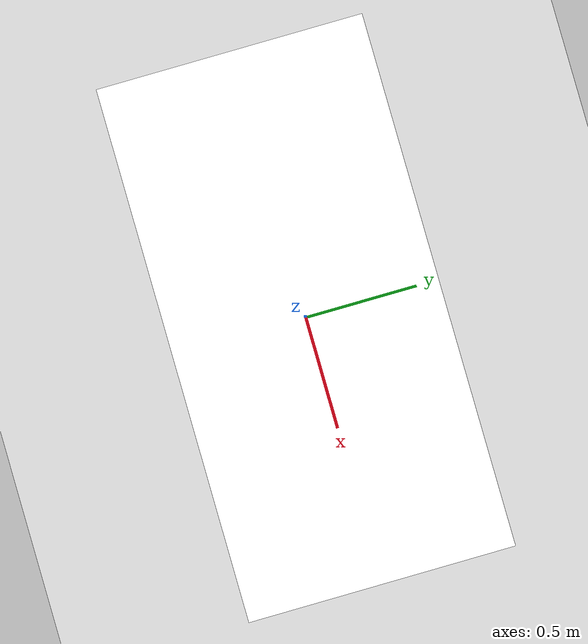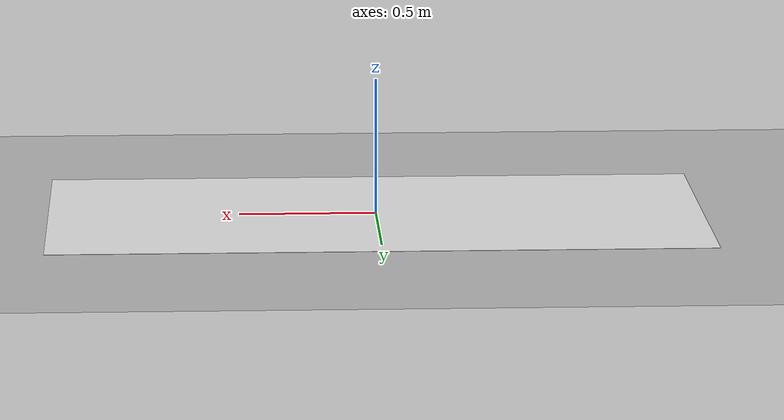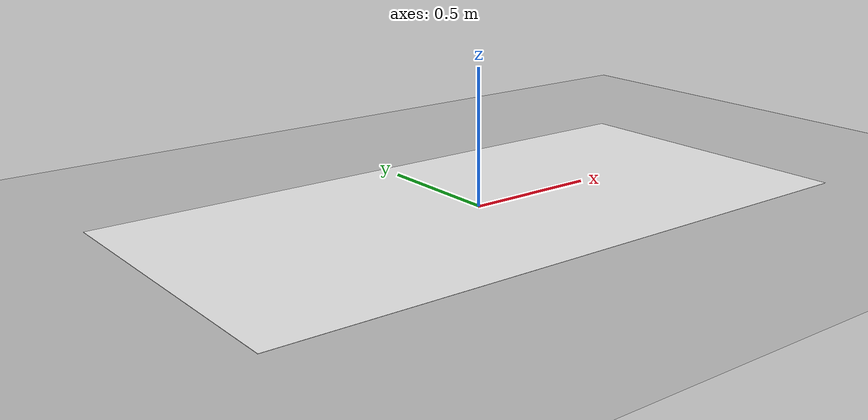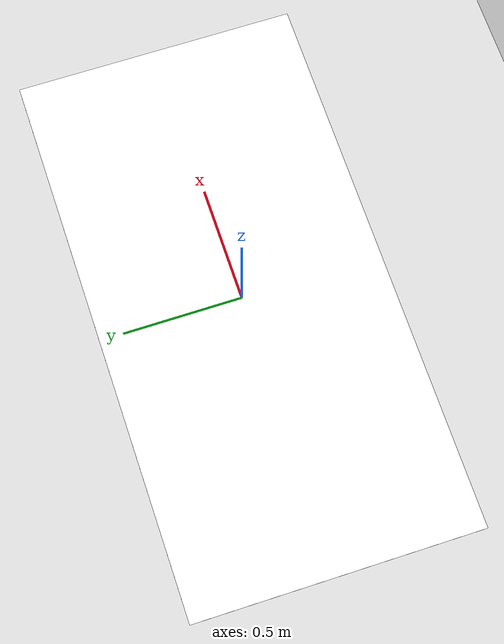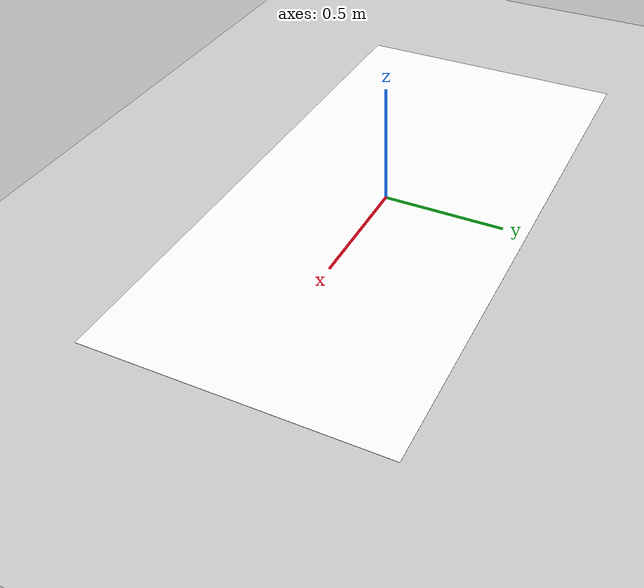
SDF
<?xml version="1.0" ?>

<sdf version="1.6">
  <world name="empty">
    <physics name="1ms" type="ignored">
      <max_step_size>0.001</max_step_size>
      <real_time_factor>1.0</real_time_factor>
    </physics>
    <plugin
      filename="gz-sim-physics-system"
      name="gz::sim::systems::Physics">
    </plugin>
    <plugin
      filename="gz-sim-user-commands-system"
      name="gz::sim::systems::UserCommands">
    </plugin>
    <plugin
      filename="gz-sim-scene-broadcaster-system"
      name="gz::sim::systems::SceneBroadcaster">
    </plugin>
    <plugin
      filename="gz-sim-contact-system"
      name="gz::sim::systems::Contact">
    </plugin>

    <plugin
      filename="gz-sim-sensors-system"
      name="gz::sim::systems::Sensors">
      <render_engine>ogre2</render_engine>
    </plugin>
    <plugin
      filename="gz-sim-imu-system"
      name="gz::sim::systems::Imu">
    </plugin>

    <light type="directional" name="sun">
      <cast_shadows>true</cast_shadows>
      <pose>0 0 10 0 0 0</pose>
      <diffuse>0.8 0.8 0.8 1</diffuse>
      <specular>0.2 0.2 0.2 1</specular>
      <attenuation>
        <range>1000</range>
        <constant>0.9</constant>
        <linear>0.01</linear>
        <quadratic>0.001</quadratic>
      </attenuation>
      <direction>-0.5 0.1 -0.9</direction>
    </light>

    <gravity>0 0 -9.8000000000000007</gravity>
    <magnetic_field>5.5644999999999998e-06 2.2875799999999999e-05 -4.2388400000000002e-05</magnetic_field>
    <atmosphere type='adiabatic'/>
    <scene>
      <ambient>0.400000006 0.400000006 0.400000006 1</ambient>
      <background>0.699999988 0.699999988 0.699999988 1</background>
      <shadows>true</shadows>
    </scene>

    <model name="ground_plane">
      <static>true</static>
      <link name="link">
        <collision name="collision">
          <geometry>
            <plane>
              <normal>0 0 1</normal>
              <size>100 100</size>
            </plane>
          </geometry>
          <surface>
            <friction>
              <ode>
                <mu>50</mu>
              </ode>
            </friction>
            <bounce/>
            <contact/>
          </surface>
        </collision>
        <visual name="visual">
          <geometry>
            <plane>
              <normal>0 0 1</normal>
              <size>100 100</size>
            </plane>
          </geometry>
          <material>
            <ambient>0.8 0.8 0.8 1</ambient>
            <diffuse>0.8 0.8 0.8 1</diffuse>
            <specular>0.8 0.8 0.8 1</specular>
          </material>
        </visual>
      </link>
    </model>

    <include>
      <uri>model://physical_ai</uri>
    </include>

  </world>
</sdf>

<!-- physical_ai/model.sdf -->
<sdf version='1.9'>
  <model name='arucotag'>
    <static>true</static>
    <pose>0 0 0.001 0 0 0</pose>
    <link name='base'>
      <visual name='base_visual'>
        <geometry>
          <plane>
            <normal>0 0 1</normal>
            <size>2.4 1.2</size>
          </plane>
        </geometry>
        <material>
          <diffuse>1 1 1 1</diffuse>
          <specular>0.4 0.4 0.4 1</specular>
          <pbr>
            <metal>
              <albedo_map>model://physical_ai/map.jpg</albedo_map>
            </metal>
          </pbr>
        </material>
      </visual>
    </link>
  </model>
</sdf>
